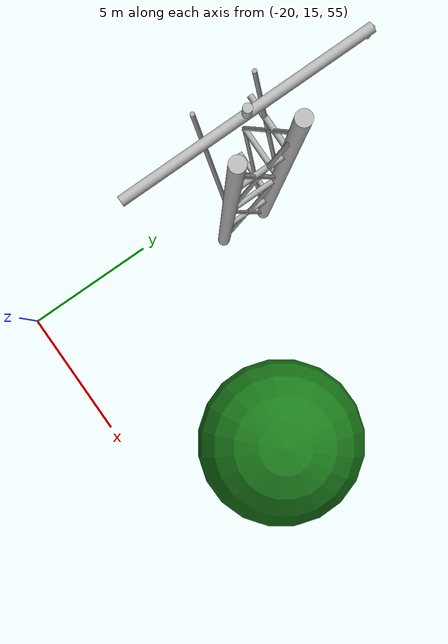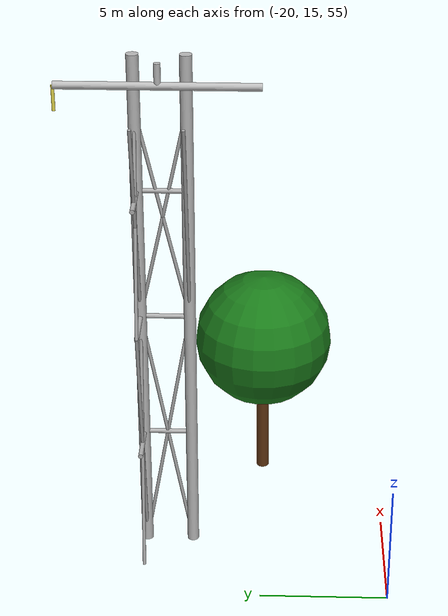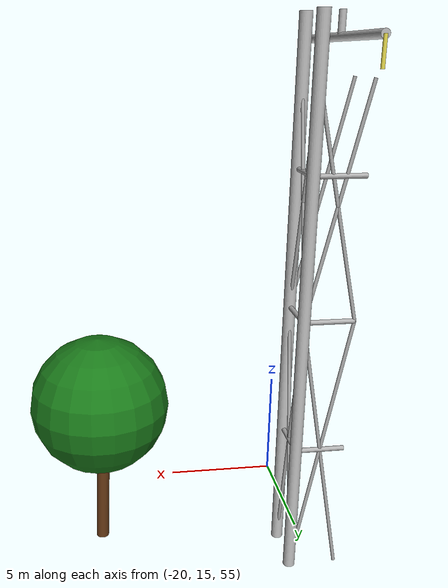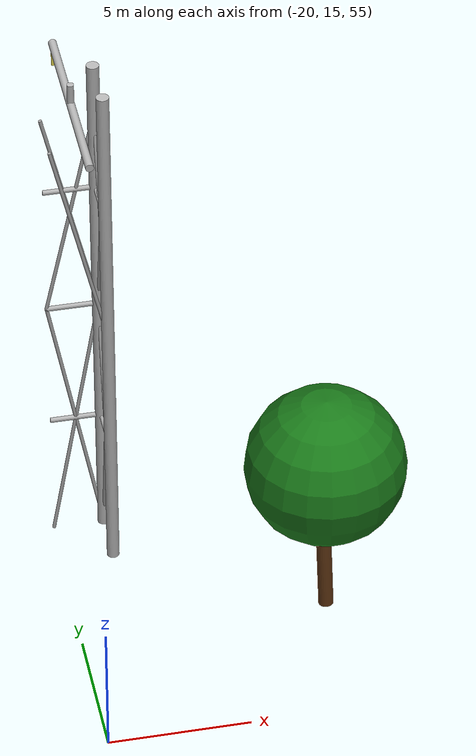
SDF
<sdf version="1.9">
 <world name="power_line_inspection">
  <model name="ground_plane">
   <static>true</static>
   <pose>0 0 -0.01 0 0 0</pose>
   <link name="link">
    <collision name="collision">
     <geometry><plane><normal>0 0 1</normal><size>600 600</size></plane></geometry>
     <surface><friction><ode><mu>1.0</mu><mu2>1.0</mu2></ode></friction></surface>
    </collision>
    <visual name="visual">
     <cast_shadows>false</cast_shadows>
     <geometry><plane><normal>0 0 1</normal><size>600 600</size></plane></geometry>
     <material>
      <ambient>0.28 0.35 0.18 1</ambient>
      <diffuse>0.32 0.40 0.22 1</diffuse>
      <specular>0.02 0.02 0.02 1</specular>
     </material>
    </visual>
   </link>
  </model>
  <model name="peak_tower_col1-1">
   <static>true</static>
   <pose>-18.386 22.671 66.602 0.00000 0.00000 0.00000</pose>
   <link name="link">
    <visual name="v">
     <geometry><cylinder><radius>0.22</radius><length>20.0000</length></cylinder></geometry>
     <material><ambient>0.72 0.72 0.72 1</ambient><diffuse>0.72 0.72 0.72 1</diffuse></material>
    </visual>
    <collision name="c">
     <geometry><cylinder><radius>0.22</radius><length>20.0000</length></cylinder></geometry>
    </collision>
   </link>
  </model>
  <model name="peak_tower_col11">
   <static>true</static>
   <pose>-18.386 24.471 66.602 0.00000 0.00000 0.00000</pose>
   <link name="link">
    <visual name="v">
     <geometry><cylinder><radius>0.22</radius><length>20.0000</length></cylinder></geometry>
     <material><ambient>0.72 0.72 0.72 1</ambient><diffuse>0.72 0.72 0.72 1</diffuse></material>
    </visual>
    <collision name="c">
     <geometry><cylinder><radius>0.22</radius><length>20.0000</length></cylinder></geometry>
    </collision>
   </link>
  </model>
  <model name="peak_tower_b1_e1">
   <static>true</static>
   <pose>-19.286 24.471 61.602 0.00000 1.57080 0.00000</pose>
   <link name="link">
    <visual name="v">
     <geometry><cylinder><radius>0.09</radius><length>1.8000</length></cylinder></geometry>
     <material><ambient>0.68 0.68 0.68 1</ambient><diffuse>0.68 0.68 0.68 1</diffuse></material>
    </visual>
    <collision name="c">
     <geometry><cylinder><radius>0.09</radius><length>1.8000</length></cylinder></geometry>
    </collision>
   </link>
  </model>
  <model name="peak_tower_b1_e2">
   <static>true</static>
   <pose>-18.386 23.571 61.602 1.57080 0.00000 0.00000</pose>
   <link name="link">
    <visual name="v">
     <geometry><cylinder><radius>0.09</radius><length>1.8000</length></cylinder></geometry>
     <material><ambient>0.68 0.68 0.68 1</ambient><diffuse>0.68 0.68 0.68 1</diffuse></material>
    </visual>
    <collision name="c">
     <geometry><cylinder><radius>0.09</radius><length>1.8000</length></cylinder></geometry>
    </collision>
   </link>
  </model>
  <model name="peak_tower_b2_e1">
   <static>true</static>
   <pose>-19.286 24.471 66.602 0.00000 1.57080 0.00000</pose>
   <link name="link">
    <visual name="v">
     <geometry><cylinder><radius>0.09</radius><length>1.8000</length></cylinder></geometry>
     <material><ambient>0.68 0.68 0.68 1</ambient><diffuse>0.68 0.68 0.68 1</diffuse></material>
    </visual>
    <collision name="c">
     <geometry><cylinder><radius>0.09</radius><length>1.8000</length></cylinder></geometry>
    </collision>
   </link>
  </model>
  <model name="peak_tower_b2_e2">
   <static>true</static>
   <pose>-18.386 23.571 66.602 1.57080 0.00000 0.00000</pose>
   <link name="link">
    <visual name="v">
     <geometry><cylinder><radius>0.09</radius><length>1.8000</length></cylinder></geometry>
     <material><ambient>0.68 0.68 0.68 1</ambient><diffuse>0.68 0.68 0.68 1</diffuse></material>
    </visual>
    <collision name="c">
     <geometry><cylinder><radius>0.09</radius><length>1.8000</length></cylinder></geometry>
    </collision>
   </link>
  </model>
  <model name="peak_tower_b3_e1">
   <static>true</static>
   <pose>-19.286 24.471 71.602 0.00000 1.57080 0.00000</pose>
   <link name="link">
    <visual name="v">
     <geometry><cylinder><radius>0.09</radius><length>1.8000</length></cylinder></geometry>
     <material><ambient>0.68 0.68 0.68 1</ambient><diffuse>0.68 0.68 0.68 1</diffuse></material>
    </visual>
    <collision name="c">
     <geometry><cylinder><radius>0.09</radius><length>1.8000</length></cylinder></geometry>
    </collision>
   </link>
  </model>
  <model name="peak_tower_b3_e2">
   <static>true</static>
   <pose>-18.386 23.571 71.602 1.57080 0.00000 0.00000</pose>
   <link name="link">
    <visual name="v">
     <geometry><cylinder><radius>0.09</radius><length>1.8000</length></cylinder></geometry>
     <material><ambient>0.68 0.68 0.68 1</ambient><diffuse>0.68 0.68 0.68 1</diffuse></material>
    </visual>
    <collision name="c">
     <geometry><cylinder><radius>0.09</radius><length>1.8000</length></cylinder></geometry>
    </collision>
   </link>
  </model>
  <model name="peak_tower_diag1_0a">
   <static>true</static>
   <pose>-18.386 23.571 61.602 -0.17809 0.00000 0.00000</pose>
   <link name="link">
    <visual name="v">
     <geometry><cylinder><radius>0.063</radius><length>10.1607</length></cylinder></geometry>
     <material><ambient>0.65 0.65 0.65 1</ambient><diffuse>0.65 0.65 0.65 1</diffuse></material>
    </visual>
    <collision name="c">
     <geometry><cylinder><radius>0.063</radius><length>10.1607</length></cylinder></geometry>
    </collision>
   </link>
  </model>
  <model name="peak_tower_diag1_0b">
   <static>true</static>
   <pose>-18.386 23.571 61.602 0.17809 0.00000 0.00000</pose>
   <link name="link">
    <visual name="v">
     <geometry><cylinder><radius>0.063</radius><length>10.1607</length></cylinder></geometry>
     <material><ambient>0.65 0.65 0.65 1</ambient><diffuse>0.65 0.65 0.65 1</diffuse></material>
    </visual>
    <collision name="c">
     <geometry><cylinder><radius>0.063</radius><length>10.1607</length></cylinder></geometry>
    </collision>
   </link>
  </model>
  <model name="peak_tower_diag1_1a">
   <static>true</static>
   <pose>-18.386 23.571 70.602 -0.22131 0.00000 0.00000</pose>
   <link name="link">
    <visual name="v">
     <geometry><cylinder><radius>0.063</radius><length>8.2000</length></cylinder></geometry>
     <material><ambient>0.65 0.65 0.65 1</ambient><diffuse>0.65 0.65 0.65 1</diffuse></material>
    </visual>
    <collision name="c">
     <geometry><cylinder><radius>0.063</radius><length>8.2000</length></cylinder></geometry>
    </collision>
   </link>
  </model>
  <model name="peak_tower_diag1_1b">
   <static>true</static>
   <pose>-18.386 23.571 70.602 0.22131 0.00000 0.00000</pose>
   <link name="link">
    <visual name="v">
     <geometry><cylinder><radius>0.063</radius><length>8.2000</length></cylinder></geometry>
     <material><ambient>0.65 0.65 0.65 1</ambient><diffuse>0.65 0.65 0.65 1</diffuse></material>
    </visual>
    <collision name="c">
     <geometry><cylinder><radius>0.063</radius><length>8.2000</length></cylinder></geometry>
    </collision>
   </link>
  </model>
  <model name="peak_tower_diag2_1b">
   <static>true</static>
   <pose>-19.286 22.671 70.602 0.00000 -0.22131 0.00000</pose>
   <link name="link">
    <visual name="v">
     <geometry><cylinder><radius>0.063</radius><length>8.2000</length></cylinder></geometry>
     <material><ambient>0.65 0.65 0.65 1</ambient><diffuse>0.65 0.65 0.65 1</diffuse></material>
    </visual>
    <collision name="c">
     <geometry><cylinder><radius>0.063</radius><length>8.2000</length></cylinder></geometry>
    </collision>
   </link>
  </model>
  <model name="peak_tower_diag3_0a">
   <static>true</static>
   <pose>-19.286 24.471 61.602 0.00000 0.17809 0.00000</pose>
   <link name="link">
    <visual name="v">
     <geometry><cylinder><radius>0.063</radius><length>10.1607</length></cylinder></geometry>
     <material><ambient>0.65 0.65 0.65 1</ambient><diffuse>0.65 0.65 0.65 1</diffuse></material>
    </visual>
    <collision name="c">
     <geometry><cylinder><radius>0.063</radius><length>10.1607</length></cylinder></geometry>
    </collision>
   </link>
  </model>
  <model name="peak_tower_diag3_0b">
   <static>true</static>
   <pose>-19.286 24.471 61.602 0.00000 -0.17809 0.00000</pose>
   <link name="link">
    <visual name="v">
     <geometry><cylinder><radius>0.063</radius><length>10.1607</length></cylinder></geometry>
     <material><ambient>0.65 0.65 0.65 1</ambient><diffuse>0.65 0.65 0.65 1</diffuse></material>
    </visual>
    <collision name="c">
     <geometry><cylinder><radius>0.063</radius><length>10.1607</length></cylinder></geometry>
    </collision>
   </link>
  </model>
  <model name="peak_tower_diag3_1a">
   <static>true</static>
   <pose>-19.286 24.471 70.602 0.00000 0.22131 0.00000</pose>
   <link name="link">
    <visual name="v">
     <geometry><cylinder><radius>0.063</radius><length>8.2000</length></cylinder></geometry>
     <material><ambient>0.65 0.65 0.65 1</ambient><diffuse>0.65 0.65 0.65 1</diffuse></material>
    </visual>
    <collision name="c">
     <geometry><cylinder><radius>0.063</radius><length>8.2000</length></cylinder></geometry>
    </collision>
   </link>
  </model>
  <model name="peak_tower_diag3_1b">
   <static>true</static>
   <pose>-19.286 24.471 70.602 0.00000 -0.22131 0.00000</pose>
   <link name="link">
    <visual name="v">
     <geometry><cylinder><radius>0.063</radius><length>8.2000</length></cylinder></geometry>
     <material><ambient>0.65 0.65 0.65 1</ambient><diffuse>0.65 0.65 0.65 1</diffuse></material>
    </visual>
    <collision name="c">
     <geometry><cylinder><radius>0.063</radius><length>8.2000</length></cylinder></geometry>
    </collision>
   </link>
  </model>
  <model name="peak_tower_arm">
   <static>true</static>
   <pose>-19.286 23.571 75.802 -1.57080 0.00000 0.00000</pose>
   <link name="link">
    <visual name="v">
     <geometry><cylinder><radius>0.14</radius><length>7.0000</length></cylinder></geometry>
     <material><ambient>0.72 0.72 0.72 1</ambient><diffuse>0.72 0.72 0.72 1</diffuse></material>
    </visual>
    <collision name="c">
     <geometry><cylinder><radius>0.14</radius><length>7.0000</length></cylinder></geometry>
    </collision>
   </link>
  </model>
  <model name="peak_tower_vsup">
   <static>true</static>
   <pose>-19.286 23.571 76.202 3.14159 0.00000 0.00000</pose>
   <link name="link">
    <visual name="v">
     <geometry><cylinder><radius>0.12</radius><length>0.8000</length></cylinder></geometry>
     <material><ambient>0.72 0.72 0.72 1</ambient><diffuse>0.72 0.72 0.72 1</diffuse></material>
    </visual>
    <collision name="c">
     <geometry><cylinder><radius>0.12</radius><length>0.8000</length></cylinder></geometry>
    </collision>
   </link>
  </model>
  <model name="peak_tower_insR">
   <static>true</static>
   <pose>-19.286 27.071 75.352 3.14159 0.00000 0.00000</pose>
   <link name="link">
    <visual name="v">
     <geometry><cylinder><radius>0.06</radius><length>0.9000</length></cylinder></geometry>
     <material><ambient>0.9 0.85 0.3 1</ambient><diffuse>0.9 0.85 0.3 1</diffuse></material>
    </visual>
    <collision name="c">
     <geometry><cylinder><radius>0.06</radius><length>0.9000</length></cylinder></geometry>
    </collision>
   </link>
  </model>
  <model name="tree_01">
   <static>true</static>
   <pose>-11.36 20.05 55.35 0 0 3.32</pose>
   <link name="link">
    <visual name="trunk">
     <pose>0 0 2.432 0.017 0.035 0</pose>
     <geometry><cylinder><radius>0.266</radius><length>4.863</length></cylinder></geometry>
     <material><ambient>0.32 0.18 0.05 1</ambient><diffuse>0.38 0.21 0.07 1</diffuse></material>
    </visual>
    <collision name="trunk_c">
     <pose>0 0 2.432 0 0 0</pose>
     <geometry><cylinder><radius>0.266</radius><length>4.863</length></cylinder></geometry>
    </collision>
    <visual name="canopy">
     <pose>0 0 6.420 0 0 0</pose>
     <geometry><sphere><radius>2.830</radius></sphere></geometry>
     <material><ambient>0.07 0.38 0.07 1</ambient><diffuse>0.10 0.48 0.10 1</diffuse></material>
    </visual>
    <collision name="canopy_c">
     <pose>0 0 6.420 0 0 0</pose>
     <geometry><sphere><radius>2.830</radius></sphere></geometry>
    </collision>
   </link>
  </model>
 </world>
</sdf>
